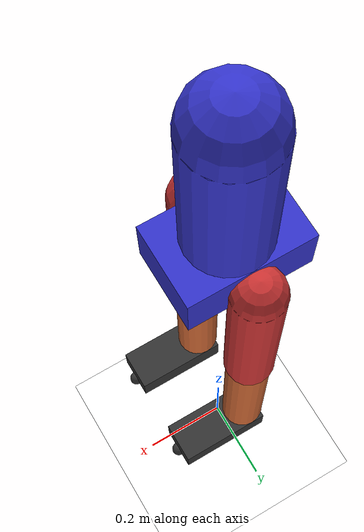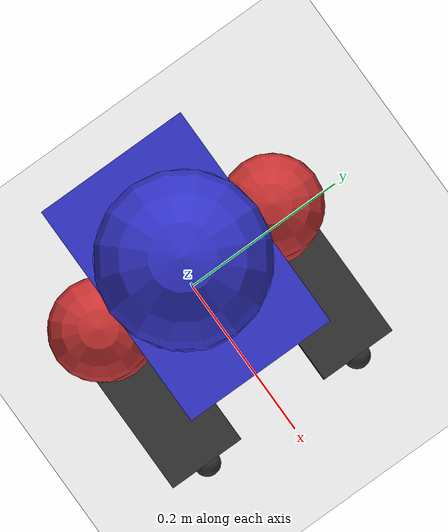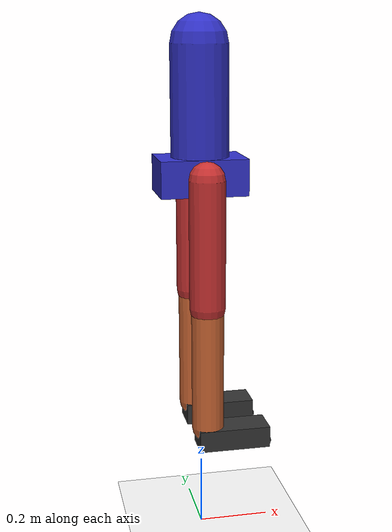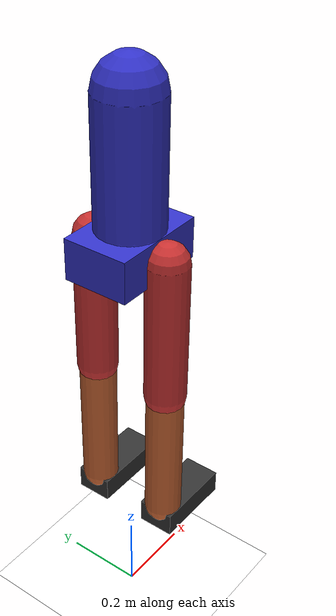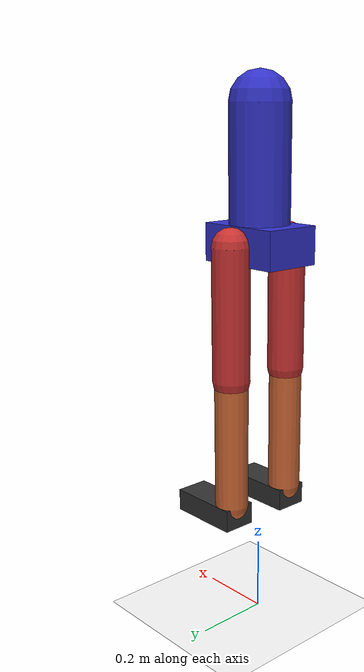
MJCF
<mujoco model="simple_biped">
  <compiler angle="degree" coordinate="local" inertiafromgeom="true"/>
  <option timestep="0.002" gravity="0 0 -9.81" integrator="RK4"/>
  <size njmax="2000" nconmax="400"/>
  <default>
    <joint limited="true" damping="1" armature="0.02"/>
    <geom friction="1.0 0.1 0.01" solref="0.004 1" solimp="0.9 0.95 0.001"
          condim="4" rgba="0.7 0.7 0.7 1"/>
    <motor ctrllimited="false" ctrlrange="-100 100"/>
  </default>

  <asset>
    <texture name="texplane" type="2d" builtin="checker" rgb1="0.2 0.3 0.2" rgb2="0.1 0.2 0.1"
             width="512" height="512"/>
    <material name="matplane" texture="texplane" texrepeat="5 5" reflectance="0.1"/>
  </asset>

  <worldbody>
    <light pos="0 0 3" dir="0 0 -1"/>
    <geom name="floor" type="plane" size="5 5 0.1" material="matplane" rgba="1 1 1 1"/>

    <!-- Free-floating torso -->
    <body name="torso" pos="0 0 1.05">
      <freejoint/>
      <geom name="torso_geom" type="capsule" fromto="0 0 0.05  0 0 0.35" size="0.08" rgba="0.2 0.2 0.8 1"/>
      <geom name="pelvis_geom" type="box" pos="0 0 0.0" size="0.12 0.08 0.05" rgba="0.2 0.2 0.8 1"/>

      <!-- LEFT LEG -->
      <body name="left_thigh" pos="0 0.10 0.0">
        <!-- Hip: pitch (around y) -->
        <joint name="left_hip" type="hinge" axis="0 1 0" range="-60 60"/>
        <geom type="capsule" fromto="0 0 0  0 0 -0.35" size="0.05" rgba="0.8 0.2 0.2 1"/>

        <body name="left_shin" pos="0 0 -0.35">
          <!-- Knee: pitch -->
          <joint name="left_knee" type="hinge" axis="0 1 0" range="-5 120"/>
          <geom type="capsule" fromto="0 0 0  0 0 -0.35" size="0.045" rgba="0.8 0.4 0.2 1"/>

          <body name="left_foot" pos="0 0 -0.35">
            <!-- Ankle: pitch -->
            <joint name="left_ankle" type="hinge" axis="0 1 0" range="-45 45"/>
            <!-- Foot -->
            <geom name="left_foot_geom" type="box" pos="0.07 0 -0.03" size="0.10 0.045 0.03"
                  rgba="0.2 0.2 0.2 1"/>
            <!-- Optional toe contact point (small sphere) -->
            <geom name="left_toe" type="sphere" pos="0.17 0 -0.06" size="0.015" rgba="0.2 0.2 0.2 1"/>
          </body>
        </body>
      </body>

      <!-- RIGHT LEG -->
      <body name="right_thigh" pos="0 -0.10 0.0">
        <joint name="right_hip" type="hinge" axis="0 1 0" range="-60 60"/>
        <geom type="capsule" fromto="0 0 0  0 0 -0.35" size="0.05" rgba="0.8 0.2 0.2 1"/>

        <body name="right_shin" pos="0 0 -0.35">
          <joint name="right_knee" type="hinge" axis="0 1 0" range="-5 120"/>
          <geom type="capsule" fromto="0 0 0  0 0 -0.35" size="0.045" rgba="0.8 0.4 0.2 1"/>

          <body name="right_foot" pos="0 0 -0.35">
            <joint name="right_ankle" type="hinge" axis="0 1 0" range="-45 45"/>
            <geom name="right_foot_geom" type="box" pos="0.07 0 -0.03" size="0.10 0.045 0.03"
                  rgba="0.2 0.2 0.2 1"/>
            <geom name="right_toe" type="sphere" pos="0.17 0 -0.06" size="0.015" rgba="0.2 0.2 0.2 1"/>
          </body>
        </body>
      </body>
    </body>
  </worldbody>

  <actuator>
    <!-- Torque motors on each hinge joint -->
    <motor name="m_left_hip" joint="left_hip" gear="120" ctrlrange="-100 100"/>
    <motor name="m_left_knee" joint="left_knee" gear="120" ctrlrange="-100 100"/>
    <motor name="m_left_ankle" joint="left_ankle" gear="80"  ctrlrange="-100 100"/>
    <motor name="m_right_hip" joint="right_hip" gear="120" ctrlrange="-100 100"/>
    <motor name="m_right_knee" joint="right_knee" gear="120" ctrlrange="-100 100"/>
    <motor name="m_right_ankle" joint="right_ankle" gear="80"  ctrlrange="-100 100"/>
  </actuator>

  <!-- Helpful initial pose: slightly bent knees -->
  <keyframe>
    <key name="stand_init"
         qpos="0 0 1.05  1 0 0 0   0  20 -10   0  20 -10"
         ctrl="0 0 0 0 0 0"/>
  </keyframe>
</mujoco>
